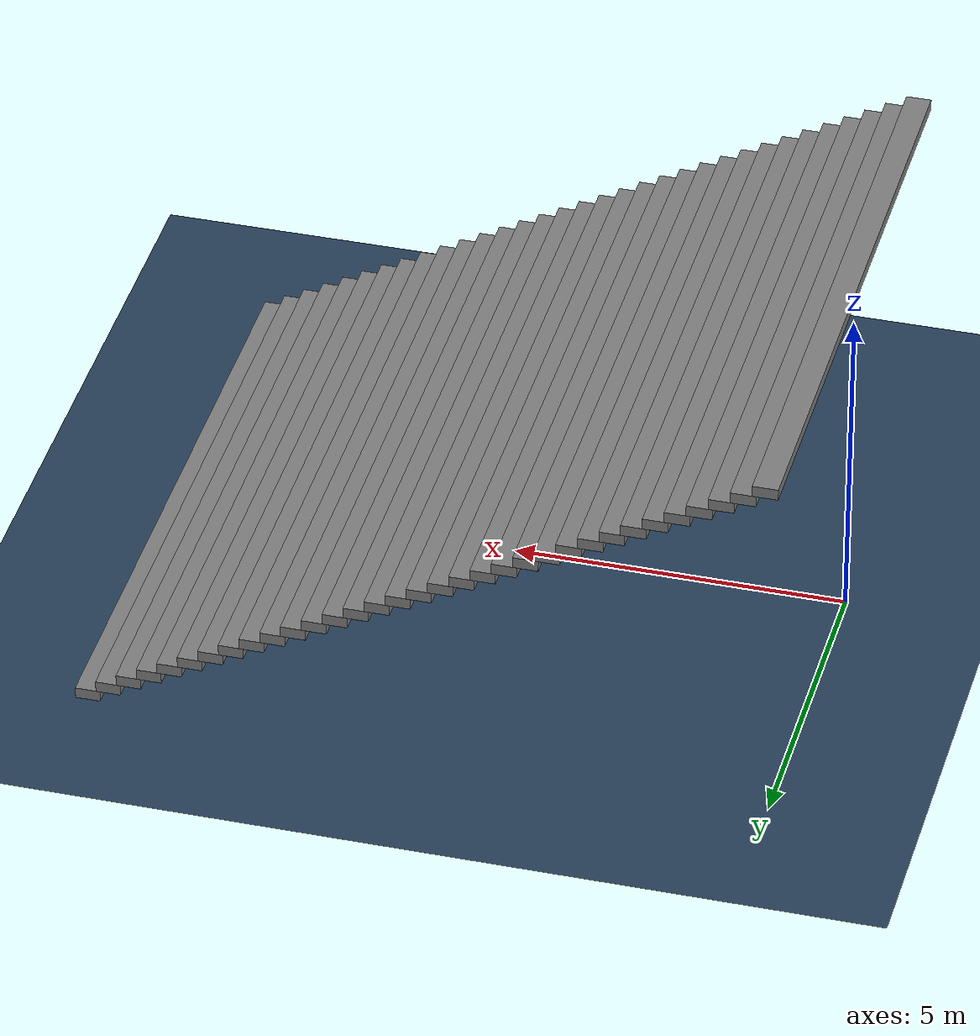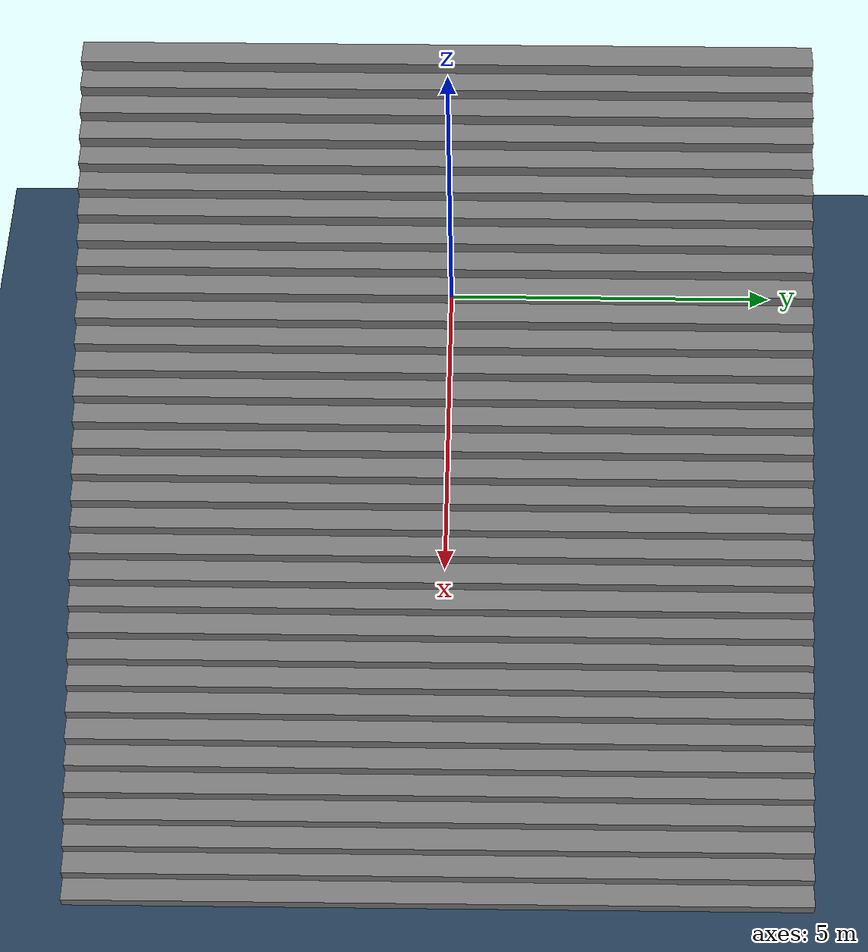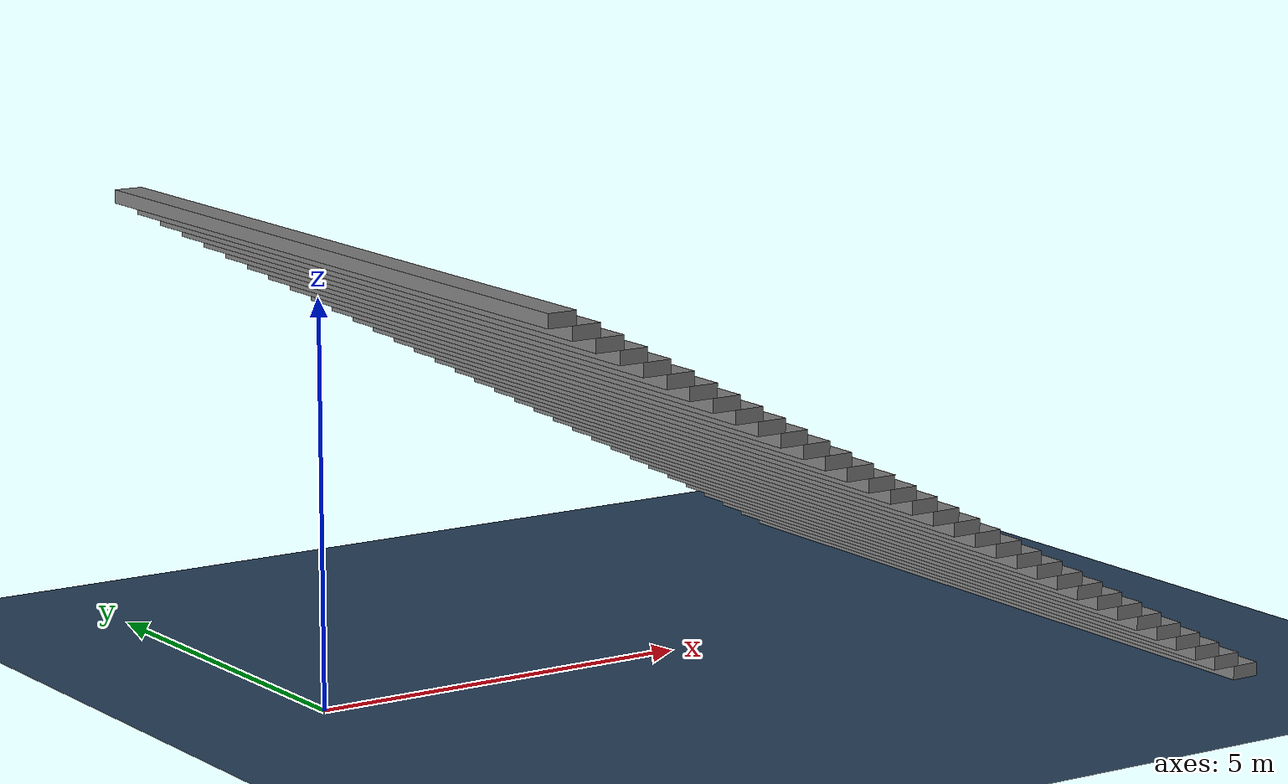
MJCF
<mujoco model="stairs_down_4">
  <!-- Terrain Type: stairs_down, Level: 4, Stairs step height: 0.1700 -->
  <statistic center="0 0 0.1" extent="0.8" />
  <visual>
    <headlight diffuse="0.6 0.6 0.6" ambient="0.3 0.3 0.3" specular="0 0 0" />
    <rgba haze="0.15 0.25 0.35 1" />
    <global azimuth="-130" elevation="-20" />
  </visual>
  <asset>
    <texture type="skybox" builtin="gradient" rgb1="0.3 0.5 0.7" rgb2="0 0 0" width="512" height="3072" />
    <texture type="2d" name="groundplane" builtin="checker" mark="edge" rgb1="0.2 0.3 0.4" rgb2="0.1 0.2 0.3" markrgb="0.8 0.8 0.8" width="300" height="300" />
    <material name="groundplane" texture="groundplane" texuniform="true" texrepeat="5 5" reflectance="0.0" />
  </asset>
  <worldbody>
    <light pos="0 0 1.5" dir="0 0 -1" directional="true" />
    <geom name="floor" size="0 0 0.05" type="plane" material="groundplane" />
    <geom pos="0.155 0.0 5.5249999999999995" type="box" size="0.186 5.0 0.08499999999999999" quat="1.0 0.0 0.0 0.0" />
    <geom pos="0.46499999999999997 0.0 5.3549999999999995" type="box" size="0.186 5.0 0.08499999999999999" quat="1.0 0.0 0.0 0.0" />
    <geom pos="0.7749999999999999 0.0 5.185" type="box" size="0.186 5.0 0.08499999999999999" quat="1.0 0.0 0.0 0.0" />
    <geom pos="1.085 0.0 5.015" type="box" size="0.186 5.0 0.08499999999999999" quat="1.0 0.0 0.0 0.0" />
    <geom pos="1.395 0.0 4.845" type="box" size="0.186 5.0 0.08499999999999999" quat="1.0 0.0 0.0 0.0" />
    <geom pos="1.705 0.0 4.675" type="box" size="0.186 5.0 0.08499999999999999" quat="1.0 0.0 0.0 0.0" />
    <geom pos="2.015 0.0 4.505" type="box" size="0.186 5.0 0.08499999999999999" quat="1.0 0.0 0.0 0.0" />
    <geom pos="2.325 0.0 4.335" type="box" size="0.186 5.0 0.08499999999999999" quat="1.0 0.0 0.0 0.0" />
    <geom pos="2.6350000000000002 0.0 4.165" type="box" size="0.186 5.0 0.08499999999999999" quat="1.0 0.0 0.0 0.0" />
    <geom pos="2.9450000000000003 0.0 3.995" type="box" size="0.186 5.0 0.08499999999999999" quat="1.0 0.0 0.0 0.0" />
    <geom pos="3.2550000000000003 0.0 3.825" type="box" size="0.186 5.0 0.08499999999999999" quat="1.0 0.0 0.0 0.0" />
    <geom pos="3.5650000000000004 0.0 3.6550000000000002" type="box" size="0.186 5.0 0.08499999999999999" quat="1.0 0.0 0.0 0.0" />
    <geom pos="3.8750000000000004 0.0 3.4850000000000003" type="box" size="0.186 5.0 0.08499999999999999" quat="1.0 0.0 0.0 0.0" />
    <geom pos="4.1850000000000005 0.0 3.3150000000000004" type="box" size="0.186 5.0 0.08499999999999999" quat="1.0 0.0 0.0 0.0" />
    <geom pos="4.495 0.0 3.1450000000000005" type="box" size="0.186 5.0 0.08499999999999999" quat="1.0 0.0 0.0 0.0" />
    <geom pos="4.805 0.0 2.9750000000000005" type="box" size="0.186 5.0 0.08499999999999999" quat="1.0 0.0 0.0 0.0" />
    <geom pos="5.114999999999999 0.0 2.8050000000000006" type="box" size="0.186 5.0 0.08499999999999999" quat="1.0 0.0 0.0 0.0" />
    <geom pos="5.424999999999999 0.0 2.6350000000000007" type="box" size="0.186 5.0 0.08499999999999999" quat="1.0 0.0 0.0 0.0" />
    <geom pos="5.7349999999999985 0.0 2.4650000000000007" type="box" size="0.186 5.0 0.08499999999999999" quat="1.0 0.0 0.0 0.0" />
    <geom pos="6.044999999999998 0.0 2.295000000000001" type="box" size="0.186 5.0 0.08499999999999999" quat="1.0 0.0 0.0 0.0" />
    <geom pos="6.354999999999998 0.0 2.125000000000001" type="box" size="0.186 5.0 0.08499999999999999" quat="1.0 0.0 0.0 0.0" />
    <geom pos="6.664999999999997 0.0 1.955000000000001" type="box" size="0.186 5.0 0.08499999999999999" quat="1.0 0.0 0.0 0.0" />
    <geom pos="6.974999999999997 0.0 1.785000000000001" type="box" size="0.186 5.0 0.08499999999999999" quat="1.0 0.0 0.0 0.0" />
    <geom pos="7.284999999999997 0.0 1.615000000000001" type="box" size="0.186 5.0 0.08499999999999999" quat="1.0 0.0 0.0 0.0" />
    <geom pos="7.594999999999996 0.0 1.4450000000000012" type="box" size="0.186 5.0 0.08499999999999999" quat="1.0 0.0 0.0 0.0" />
    <geom pos="7.904999999999996 0.0 1.2750000000000012" type="box" size="0.186 5.0 0.08499999999999999" quat="1.0 0.0 0.0 0.0" />
    <geom pos="8.214999999999996 0.0 1.1050000000000013" type="box" size="0.186 5.0 0.08499999999999999" quat="1.0 0.0 0.0 0.0" />
    <geom pos="8.524999999999997 0.0 0.9350000000000014" type="box" size="0.186 5.0 0.08499999999999999" quat="1.0 0.0 0.0 0.0" />
    <geom pos="8.834999999999997 0.0 0.7650000000000015" type="box" size="0.186 5.0 0.08499999999999999" quat="1.0 0.0 0.0 0.0" />
    <geom pos="9.144999999999998 0.0 0.5950000000000015" type="box" size="0.186 5.0 0.08499999999999999" quat="1.0 0.0 0.0 0.0" />
    <geom pos="9.454999999999998 0.0 0.42500000000000154" type="box" size="0.186 5.0 0.08499999999999999" quat="1.0 0.0 0.0 0.0" />
    <geom pos="9.764999999999999 0.0 0.25500000000000156" type="box" size="0.186 5.0 0.08499999999999999" quat="1.0 0.0 0.0 0.0" />
    <geom pos="10.075 0.0 0.08500000000000157" type="box" size="0.186 5.0 0.08499999999999999" quat="1.0 0.0 0.0 0.0" />
  </worldbody>
</mujoco>
